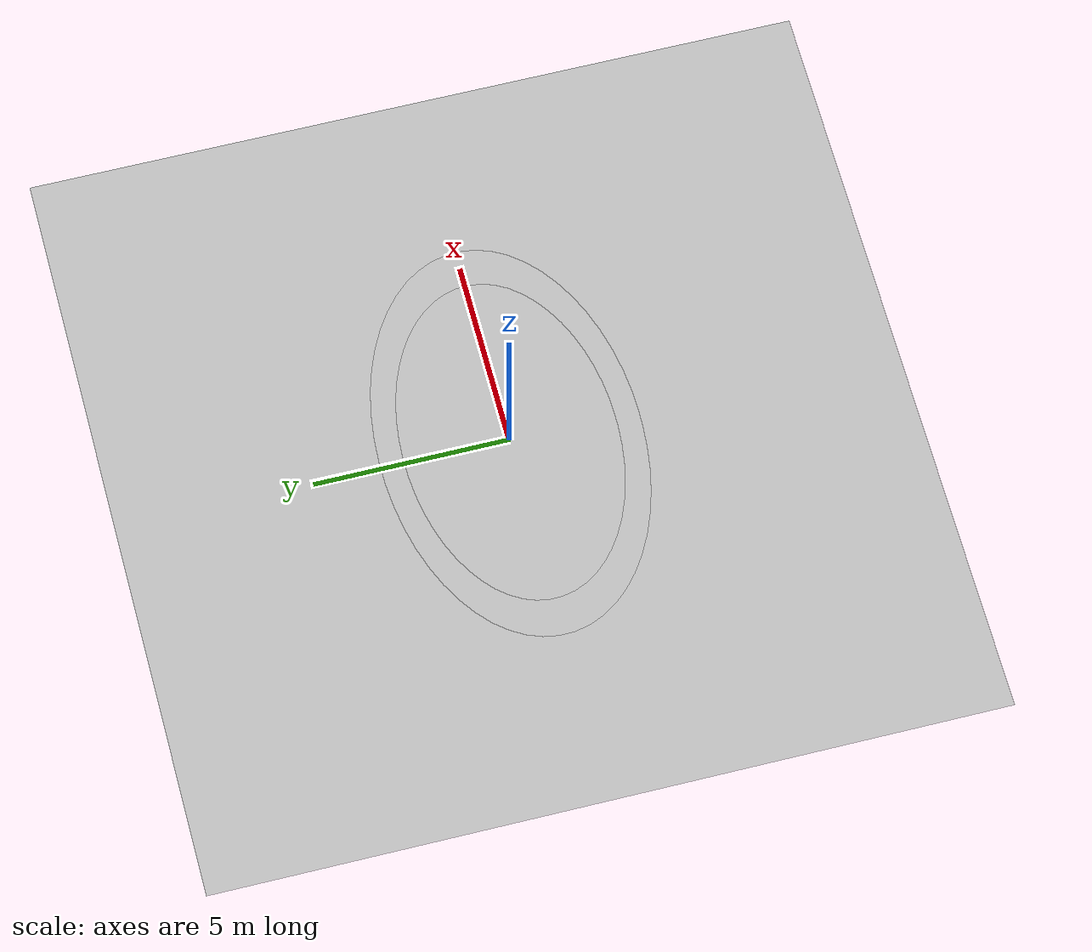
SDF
<?xml version="1.0" ?>
<sdf version="1.5">
  <world name="default">
    <!-- A global light source -->
    <include>
      <uri>model://sun</uri>
    </include>
    <!-- A ground plane -->
    <include>
      <uri>model://ground_plane_grass</uri>
    </include>
    <!-- A dirt path -->
    <include>
      <uri>model://dirt_path</uri>
	 <pose>0.0 0.0 0.01 0.0 0.0 0.0</pose>	<!-- Avoid z-fighting with ground plane -->
    </include>
  </world>
</sdf>

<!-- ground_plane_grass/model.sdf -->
<sdf version='1.6'>
	<model name="ground_plane_grass">
		<static>true</static>
		<link name='path'>
			<collision name='collision'>
				<geometry>
					<mesh>
						<uri>model://ground_plane_grass/ground_plane_grass.dae</uri>
					</mesh>
				</geometry>
				<surface>
					<friction>
						<ode>
							<mu>100</mu>
							<mu2>50</mu2>
						</ode>
					</friction>
				</surface>
			</collision>

			<visual name='visual'>
				<cast_shadows>false</cast_shadows>
				<geometry>
					<mesh>
						<uri>model://ground_plane_grass/ground_plane_grass.dae</uri>
					</mesh>
				</geometry>
			</visual>
		</link>
	</model>
</sdf>

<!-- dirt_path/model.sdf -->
<sdf version='1.6'>
  <model name="dirt_path">
	<static>true</static>
	<link name='path'>
		<collision name='collision'>
			<geometry>
				<mesh>
					<uri>model://dirt_path/dirt_path.dae</uri>
				</mesh>
			</geometry>
		</collision>

		<visual name='visual'>
			<cast_shadows>false</cast_shadows>
			<geometry>
				<mesh>
					<uri>model://dirt_path/dirt_path.dae</uri>
				</mesh>
			</geometry>
		</visual>
	</link>
  </model>
</sdf>
